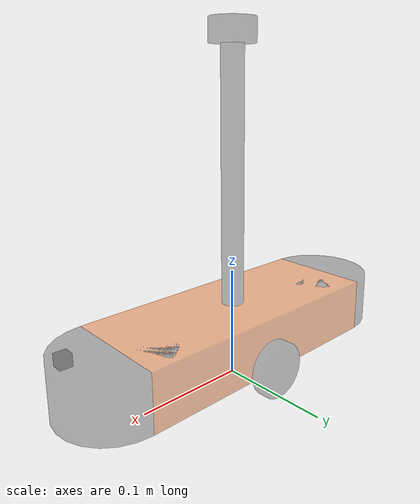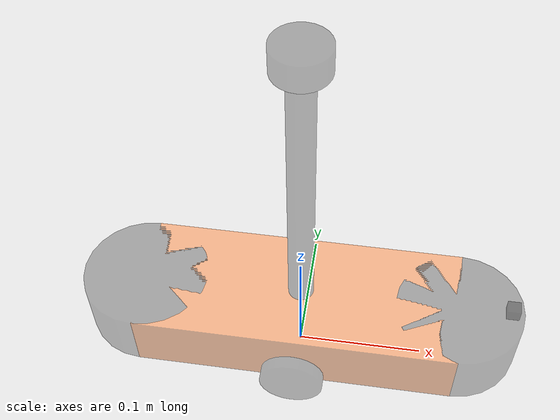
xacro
<robot name="mycar" xmlns:xacro="http://wiki.ros.org/xacro">
    <!-- 包含惯性矩阵文件 -->
    <xacro:include filename="head.xacro" />
    <!-- 包含底盘、摄像头和雷达的 xacro 文件 -->
    <xacro:include filename="ship_body.xacro" />
    <xacro:include filename="ship_camera.xacro" />
    <!-- 运动控制 -->
    <xacro:include filename="gazebo/move.xacro" />
    <!-- 雷达 -->
    <xacro:include filename="gazebo/laser.xacro" />
    <xacro:include filename="gazebo/la.xacro" />
    <!-- 相机 -->
    <xacro:include filename="gazebo/kinect.xacro" />
</robot>

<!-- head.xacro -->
<robot name="base" xmlns:xacro="http://wiki.ros.org/xacro">
    <xacro:macro name="sphere_inertial_matrix" params="m r">
        <inertial>
            <mass value="${m}" />
            <inertia ixx="${2*m*r*r/5}" ixy="0" ixz="0"
                iyy="${2*m*r*r/5}" iyz="0"
                izz="${2*m*r*r/5}" />
        </inertial>
    </xacro:macro>

    <xacro:macro name="cylinder_inertial_matrix" params="m r h">
        <inertial>
            <mass value="${m}" />
            <inertia ixx="${m*(3*r*r+h*h)/12}" ixy = "0" ixz = "0"
                iyy="${m*(3*r*r+h*h)/12}" iyz = "0"
                izz="${m*r*r/2}" />
        </inertial>
    </xacro:macro>

    <xacro:macro name="Box_inertial_matrix" params="m l w h">
        <inertial>
            <mass value="${m}" />
            <inertia ixx="${m*(h*h + l*l)/12}" ixy = "0" ixz = "0"
                iyy="${m*(w*w + l*l)/12}" iyz= "0"
                izz="${m*(w*w + h*h)/12}" />
        </inertial>
    </xacro:macro>
</robot>

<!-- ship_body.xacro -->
<robot name="mycar" xmlns:xacro="http://wiki.ros.org/xacro">

    <xacro:property name="footprint_radius" value="0.001" />
    <!-- 1.添加 base_footprint -->
    <link name="base_footprint">
        <visual>
            <geometry>
                <sphere radius="${footprint_radius}" />
            </geometry>
        </visual>
    </link>

    <!-- 甲板下 -->
    <xacro:property name="baseA_w" value="0.1" />
    <xacro:property name="baseA_l" value="0.25" />
    <xacro:property name="baseA_h" value="0.05" />
    <xacro:property name="baseA_mass" value="1" />
    <xacro:property name="lidi" value="0.02" />
    <xacro:property name="baseA_joint_z" value="${baseA_h / 2 + lidi}" />

    <!-- 2.1 link -->
    <link name="baseA_link">
        <visual>
            <geometry>
                <box size="${baseA_l} ${baseA_w} ${baseA_h}" />
            </geometry>
            <origin xyz="0 0 0" rpy="0 0 0" />
            <material name="baseAlink_color">
                <color rgba="1.0 0.5 0.2 0.5" />
            </material>
        </visual>
        <collision>
            <geometry>
                <box size="${baseA_l} ${baseA_w} ${baseA_h}" />
            </geometry>
            <origin xyz="0 0 0" rpy="0 0 0" />
        </collision>
        <!-- 调用矩阵函数 -->
        <xacro:Box_inertial_matrix m="${baseA_mass}" l="${baseA_l}" w="${baseA_w}" h="${baseA_h}" />
    </link>
    <!-- 颜色 -->
    <gazebo reference="baseA_link">
        <material>Gazebo/Red</material>
    </gazebo>
    <!-- 2.2 joint -->
    <joint name="linkA2footprint" type="fixed">
        <parent link="base_footprint" />
        <child link="baseA_link" />
        <origin xyz="0 0 ${baseA_joint_z}" rpy="0 0 0" />
    </joint>

    <!-- 雷达支杆 -->
    <xacro:property name="s_radius" value="0.01" />
    <xacro:property name="s_length" value="0.25" />
    <xacro:property name="s_mass" value="0.5" />
    <xacro:property name="s_joint_z" value="${s_length / 2}" />

    <link name="support">
        <visual>
            <geometry>
                <cylinder radius="${s_radius}" length="${s_length}" />
            </geometry>
            <origin xyz="0 0 0" rpy="0 0 0" />
            <material name="support_color">
                <color rgba="0 0 0 0.3" />
            </material>
        </visual>
        <collision>
            <geometry>
                <cylinder radius="${s_radius}" length="${s_length}" />
            </geometry>
            <origin xyz="0 0 0" rpy="0 0 0" />
        </collision>
        <xacro:cylinder_inertial_matrix m="${s_mass}" r="${s_radius}" h="${s_length}" />
    </link>
    <gazebo reference="support">
        <material>Gazebo/White</material>
    </gazebo>

    <!-- 3.2 joint -->
    <joint name="support2link" type="fixed">
        <parent link="baseA_link" />
        <child link="support" />
        <origin xyz="0 0 ${s_joint_z}" rpy="0 0 0" />
        <axis xyz="0 0 0" />
    </joint>

    <!-- laser -->
    <xacro:property name="laser_radius" value="0.02" />
    <xacro:property name="laser_length" value="0.02" />
    <xacro:property name="laser_mass" value="0.05" />
    <xacro:property name="laser_joint_z" value="${s_length / 2 + laser_length / 2}" />

    <link name="laser">
        <visual>
            <geometry>
                <cylinder radius="${laser_radius}" length="${laser_length}" />
            </geometry>
            <origin xyz="0 0 0" rpy="0 0 0" />
            <material name="laser_color">
                <color rgba="0 0 0 0.3" />
            </material>
        </visual>
        <collision>
            <geometry>
                <cylinder radius="${laser_radius}" length="${laser_length}" />
            </geometry>
            <origin xyz="0 0 0" rpy="0 0 0" />
        </collision>
        <xacro:cylinder_inertial_matrix m="${laser_mass}" r="${laser_radius}" h="${laser_length}" />
    </link>
    <gazebo reference="laser">
        <material>Gazebo/Black</material>
    </gazebo>

    <!-- 3.2 joint -->
    <joint name="laser2link" type="fixed">
        <parent link="support" />
        <child link="laser" />
        <origin xyz="0 0 ${laser_joint_z}" rpy="0 0 0" />
        <axis xyz="0 0 0" />
    </joint>

    <!-- 前后的两个圆柱y -->
    <xacro:property name="y_radius" value="0.05" />
    <xacro:property name="y_length" value="0.05" />
    <xacro:property name="y_mass" value="1" />
    <xacro:property name="y_joint_x" value="${baseA_l / 2}" />

    <xacro:macro name="y_func" params="name flag">
        <!-- 3.1 link -->
        <link name="${name}_wheel">
            <visual>
                <geometry>
                    <cylinder radius="${y_radius}" length="${y_length}" />
                </geometry>
                <origin xyz="0 0 0" rpy="0 0 0" />
                <material name="wheelA_color">
                    <color rgba="0 0 0 0.3" />
                </material>
            </visual>
            <collision>
                <geometry>
                    <cylinder radius="${y_radius}" length="${y_length}" />
                </geometry>
                <origin xyz="0 0 0" rpy="0 0 0" />
            </collision>
            <xacro:cylinder_inertial_matrix m="${y_mass}" r="${y_radius}" h="${y_length}" />
        </link>
        <gazebo reference="${name}_wheel">
            <material>Gazebo/Red</material>
        </gazebo>

        <!-- 3.2 joint -->
        <joint name="${name}2link" type="fixed">
            <parent link="baseA_link" />
            <child link="${name}_wheel" />
            <origin xyz="${(y_joint_x) * flag} 0 0" rpy="0 0 0" />
            <axis xyz="0 0 0" />
        </joint>
    </xacro:macro>
    <!-- 调用！！！ -->
    <xacro:y_func name="front" flag="1" />
    <xacro:y_func name="back" flag="-1" />

    <!-- 3添加驱动轮 -->
    <!-- 属性的封装 -->
    <xacro:property name="wheel_radius" value="0.025" />
    <xacro:property name="wheel_length" value="0.01" />
    <xacro:property name="wheel_mass" value="0.05" />
    <xacro:property name="PI" value="3.1415927" />
    <xacro:property name="wheel_joint_z" value="${lidi}" />

    <xacro:macro name="wheel_func" params="wheel_name flag">

        <link name="${wheel_name}_wheel">
            <visual>
                <geometry>
                    <cylinder radius="${wheel_radius}" length="${wheel_length}" />
                </geometry>
                <origin xyz="0 0 0" rpy="${PI / 2} 0 0" />
                <material name="wheelB_color">
                    <color rgba="0 0 0 0.3" />
                </material>
            </visual>
            <collision>
                <geometry>
                    <cylinder radius="${wheel_radius}" length="${wheel_length}" />
                </geometry>
                <origin xyz="0 0 0" rpy="${PI / 2} 0 0" />
            </collision>
            <xacro:cylinder_inertial_matrix m="${wheel_mass}" r="${wheel_radius}" h="${wheel_length}" />
        </link>
        <gazebo reference="${wheel_name}_wheel">
            <material>Gazebo/Red</material>
        </gazebo>

        <joint name="${wheel_name}2link" type="continuous">
            <parent link="baseA_link" />
            <child link="${wheel_name}_wheel" />
            <origin xyz="0 ${flag * (baseA_w / 2 + wheel_length / 2)} -0.02" rpy="0 0 0" />
            <axis xyz="0 1 0" />
        </joint>
    </xacro:macro>

    <xacro:wheel_func wheel_name="left" flag="1" />
    <xacro:wheel_func wheel_name="right" flag="-1" />

     <!-- 万向轮 -->
    <xacro:property name="wan_wheel_radius" value="0.01" />
    <xacro:property name="wan_wheel_mass" value="0.01" />
    <xacro:property name="wan_wheel_x" value="${baseA_l / 2}" />
    <xacro:property name="wan_wheel_z" value="${-(wan_wheel_radius + baseA_h / 2)}" />

    <xacro:macro name="wan_wheel" params="name flag">
        <link name="${name}_wheel">
            <visual>
                <geometry>
                    <sphere radius="${wan_wheel_radius}" />
                </geometry>
                <origin xyz="0 0 0" rpy="0 0 0" />
                <material name="wheel_color">
                    <color rgba="0 0 0 0.3" />
                </material>
            </visual>
            <collision>
                <geometry>
                    <sphere radius="${wan_wheel_radius}" />
                </geometry>
                <origin xyz="0 0 0" rpy="0 0 0" />
            </collision>
            <xacro:sphere_inertial_matrix m="${wan_wheel_mass}" r="${wan_wheel_radius}" />
        </link>
        <gazebo reference="${name}_wheel">
            <material>Gazebo/Red</material>
        </gazebo>

        <!-- 4.2 joint -->
        <!-- 前轮 -->
        <joint name="${name}2link" type="continuous">
            <parent link="baseA_link" />
            <child link="${name}_wheel" />
            <origin xyz="${flag * wan_wheel_x} 0 ${wan_wheel_z}" rpy="0 0 0" />
            <axis xyz="0 1 0" />
        </joint>
    </xacro:macro>
    <xacro:wan_wheel name="f" flag="1" />
    <xacro:wan_wheel name="b" flag="-1" />

</robot>

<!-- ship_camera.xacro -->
<robot name="mycar" xmlns:xacro="http://wiki.ros.org/xacro">

    <xacro:property name="camera_w" value="0.01" />
    <xacro:property name="camera_l" value="0.01" />
    <xacro:property name="camera_h" value="0.01" />
    <xacro:property name="camera_mass" value="0.01" />

    <xacro:property name="joint_camera_x" value="${y_radius + baseA_l / 2 - camera_w}" />
    <xacro:property name="joint_camera_y" value="0" />
    <xacro:property name="joint_camera_z" value="${baseA_h / 2 + camera_h / 2}" />

    <!-- 相机 -->
    <link name="camera">
        <visual>
            <geometry>
                <box size="${camera_l} ${camera_w} ${camera_h}" />
            </geometry>
            <material name="black">
                <color rgba="0 0 0 0.5" />
            </material>
        </visual>
        <collision>
            <geometry>
                <box size="${camera_l} ${camera_w} ${camera_h}" />
            </geometry>
            <origin xyz="0 0 0" rpy="0 0 0" />
        </collision>
        <xacro:Box_inertial_matrix m="${camera_mass}" l="${camera_l}" w="${camera_w}" h="${camera_h}" />
    </link>
    <gazebo reference="camera">
        <material>Gazebo/Black</material>
    </gazebo>

    <joint name="camera2support" type="fixed">
        <parent link="baseA_link" />
        <child link="camera" />
        <origin xyz="${joint_camera_x} ${joint_camera_y} ${joint_camera_z}" rpy="0 0 0" />
    </joint>
</robot>
